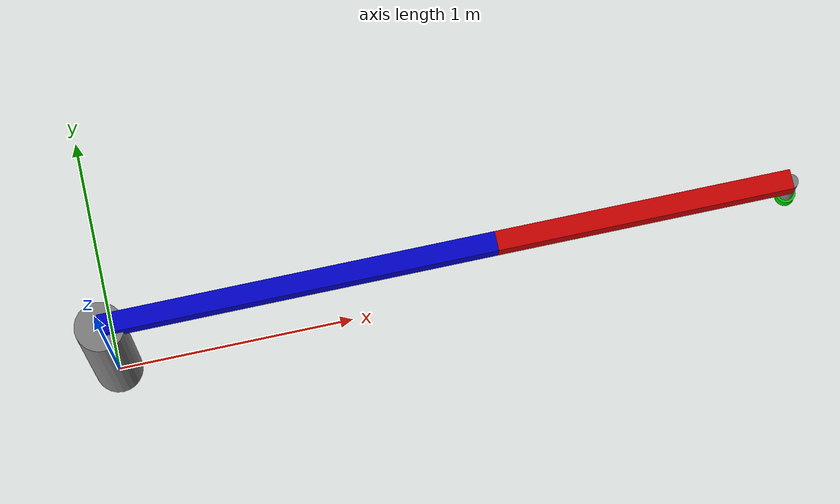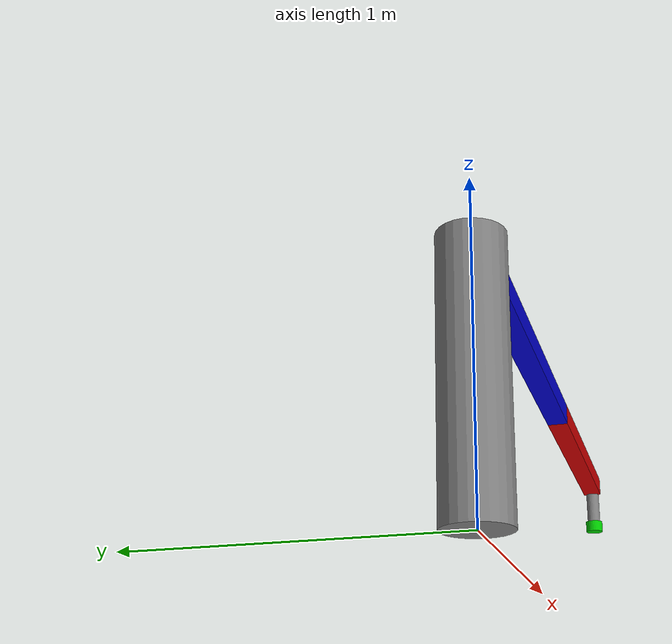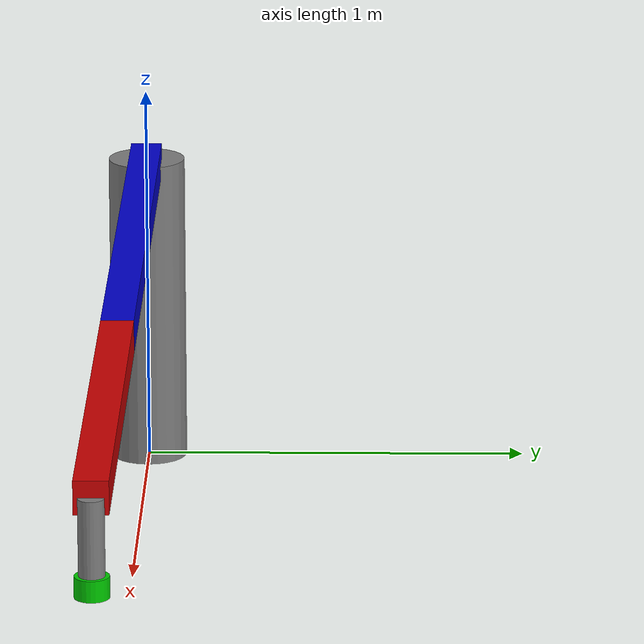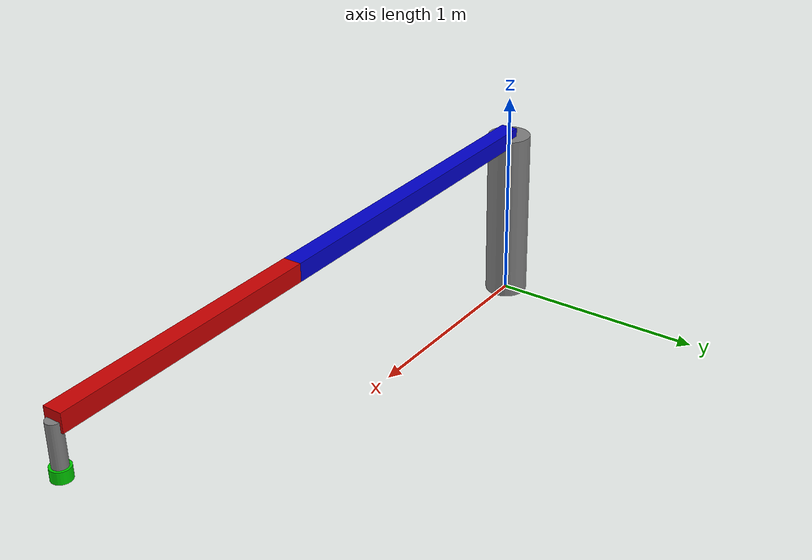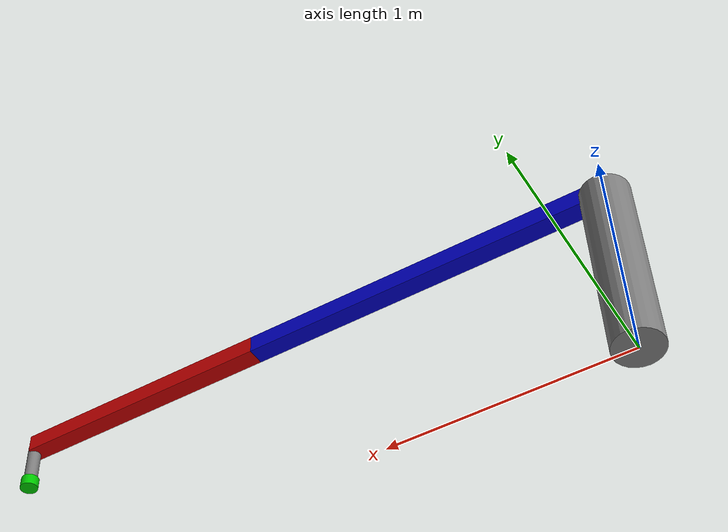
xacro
<?xml version="1.0"?>
<robot xmlns:xacro="http://www.ros.org/wiki/xacro" name="ms2r1p_cx">
  <!-- Define colors -->
  <material name="blue_cx">
    <color rgba="0.0 0.0 0.8 1.0"/>
  </material>
  <material name="red_cx">
    <color rgba="0.8 0.0 0.0 1.0"/>
  </material>
  <material name="green_cx">
    <color rgba="0.0 0.8 0.0 1.0"/>
  </material>
  <material name="grey_cx">
    <color rgba="0.5 0.5 0.5 1.0"/>
  </material>

  <!-- Base Link -->
  <link name="base_link_cx">
    <visual>
      <geometry>
        <cylinder radius="0.1" length="0.82"/>
      </geometry>
      <origin xyz="0 0 0.41" rpy="0 0 0"/>
      <material name="grey_cx"/>
    </visual>
    <collision>
      <geometry>
        <cylinder radius="0.1" length="0.82"/>
      </geometry>
      <origin xyz="0 0 0.41" rpy="0 0 0"/>
    </collision>
    <inertial>
      <mass value="1.0"/>
      <inertia ixx="0.01" ixy="0.0" ixz="0.0" iyy="0.01" iyz="0.0" izz="0.01"/>
    </inertial>
  </link>

  <!-- Arm 1 Link -->
  <link name="arm_1_cx">
    <visual>
      <geometry>
        <box size="1.6 0.08 0.08"/>
      </geometry>
      <origin xyz="0.8 0 0" rpy="0 0 0"/>
      <material name="blue_cx"/>
    </visual>
    <collision>
      <geometry>
        <box size="1.6 0.08 0.08"/>
      </geometry>
      <origin xyz="0.8 0 0" rpy="0 0 0"/>
    </collision>
    <inertial>
      <mass value="0.5"/>
      <inertia ixx="0.001" ixy="0.0" ixz="0.0" iyy="0.001" iyz="0.0" izz="0.001"/>
    </inertial>
  </link>

  <!-- Joint 1: Base to Arm1 (Revolute) -->
  <joint name="base_to_arm1_cx" type="revolute">
    <parent link="base_link_cx"/>
    <child link="arm_1_cx"/>
    <origin xyz="0 0 0.82" rpy="0 0 0"/>
    <axis xyz="0 0 1"/>
    <limit lower="-1.5708" upper="1.5708" effort="100" velocity="1.0"/>
  </joint>

  <!-- Arm 2 Link -->
  <link name="arm_2_cx">
    <visual>
      <geometry>
        <box size="1.2 0.08 0.08"/>
      </geometry>
      <origin xyz="0.6 0 0" rpy="0 0 0"/>
      <material name="red_cx"/>
    </visual>
    <collision>
      <geometry>
        <box size="1.2 0.08 0.08"/>
      </geometry>
      <origin xyz="0.6 0 0" rpy="0 0 0"/>
    </collision>
    <inertial>
      <mass value="0.3"/>
      <inertia ixx="0.001" ixy="0.0" ixz="0.0" iyy="0.001" iyz="0.0" izz="0.001"/>
    </inertial>
  </link>

  <!-- Joint 2: Arm1 to Arm2 (Revolute) -->
  <joint name="arm_1_arm_2_joint_cx" type="revolute">
    <parent link="arm_1_cx"/>
    <child link="arm_2_cx"/>
    <origin xyz="1.6 0 0" rpy="0 0 0"/>
    <axis xyz="0 0 1"/>
    <limit lower="-2.0944" upper="2.0944" effort="100" velocity="1.0"/>
  </joint>

  <!-- Prismatic Link -->
  <link name="prismatic_link_cx">
    <visual>
      <geometry>
        <cylinder radius="0.03" length="0.18"/>
      </geometry>
      <origin xyz="0 0 -0.09" rpy="0 0 0"/>
      <material name="grey_cx"/>
    </visual>
    <collision>
      <geometry>
        <cylinder radius="0.03" length="0.18"/>
      </geometry>
      <origin xyz="0 0 -0.09" rpy="0 0 0"/>
    </collision>
    <inertial>
      <mass value="0.1"/>
      <inertia ixx="0.0001" ixy="0.0" ixz="0.0" iyy="0.0001" iyz="0.0" izz="0.0001"/>
    </inertial>
  </link>

  <!-- Joint 3: Arm2 to Prismatic (Fixed) -->
  <joint name="arm_2_to_prismatic_base_cx" type="fixed">
    <parent link="arm_2_cx"/>
    <child link="prismatic_link_cx"/>
    <origin xyz="1.2 0 0" rpy="0 0 0"/>
  </joint>

  <!-- End Effector Link -->
  <link name="end_effector_cx">
    <visual>
      <geometry>
        <cylinder radius="0.04" length="0.05"/>
      </geometry>
      <origin xyz="0 0 -0.025" rpy="0 0 0"/>
      <material name="green_cx"/>
    </visual>
    <collision>
      <geometry>
        <cylinder radius="0.04" length="0.05"/>
      </geometry>
      <origin xyz="0 0 -0.025" rpy="0 0 0"/>
    </collision>
    <inertial>
      <mass value="0.05"/>
      <inertia ixx="0.0001" ixy="0.0" ixz="0.0" iyy="0.0001" iyz="0.0" izz="0.0001"/>
    </inertial>
  </link>

  <!-- Joint 4: Prismatic to End Effector (Prismatic) -->
  <joint name="arm_2_prismatic_joint_cx" type="prismatic">
    <parent link="prismatic_link_cx"/>
    <child link="end_effector_cx"/>
    <origin xyz="0 0 -0.18" rpy="0 0 0"/>
    <axis xyz="0 0 -1"/>
    <limit lower="-0.6085" upper="0.0" effort="100" velocity="0.5"/>
  </joint>

</robot>
